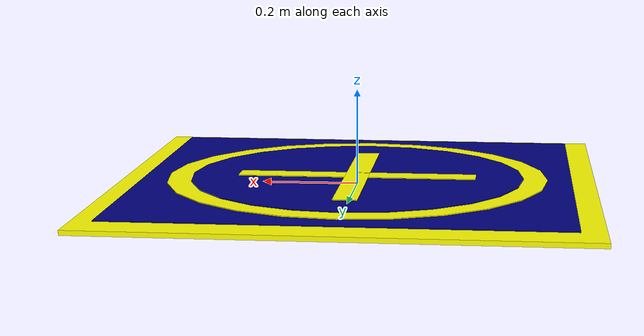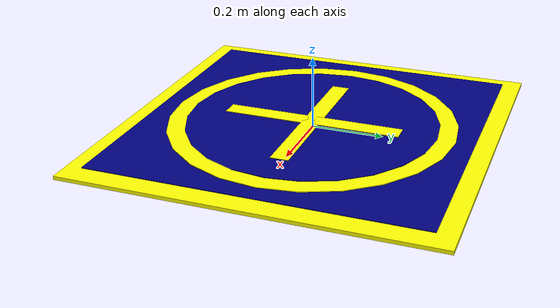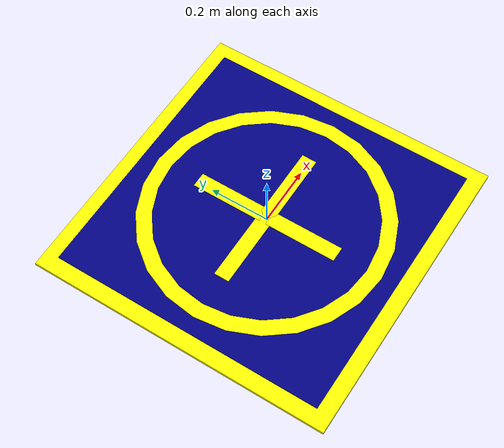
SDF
<?xml version="1.0" ?>
<sdf version="1.6">
  <model name="base_pouso">
    <static>true</static>
    <link name="link_base">

      <!-- Plano de 1x1m (contorno) -->
      <visual name="borda">
        <geometry>
          <box><size>1 1 0.01</size></box>
        </geometry>
        <material>
          <ambient>1 1 0 1</ambient>  <!-- Amarelo -->
          <diffuse>1 1 0 1</diffuse>
        </material>
      </visual>

      <!-- Plano de 1x1m (base) -->
      <visual name="base">
        <pose>0 0 0.012 0 0 0</pose>
        <geometry>
          <box><size>0.9 0.9 0.002</size></box>
        </geometry>
        <material>
          <ambient>0 0 0.5 1</ambient>  <!-- Azul escuro -->
          <diffuse>0 0 0.5 1</diffuse>
        </material>
      </visual>

      <!-- Círculo amarelo (externo: 0.8m de diâmetro) -->
      <visual name="circulo_out">
        <pose>0 0 0.014 0 0 0</pose>
        <geometry>
          <cylinder>
            <radius>0.4</radius>
            <length>0.002</length>
          </cylinder>
        </geometry>
        <material>
          <ambient>1 1 0 1</ambient>  <!-- Amarelo -->
          <diffuse>1 1 0 1</diffuse>
        </material>
      </visual>

      <!-- Círculo azul (interno: 0.7m de diâmetro) -->
      <visual name="circulo_in">
        <pose>0 0 0.016 0 0 0</pose>
        <geometry>
          <cylinder>
            <radius>0.35</radius>
            <length>0.002</length>
          </cylinder>
        </geometry>
        <material>
          <ambient>0 0 0.5 1</ambient>  <!-- Azul escuro -->
          <diffuse>0 0 0.5 1</diffuse>
        </material>
      </visual>

      <!-- Linha horizontal da cruz -->
      <visual name="linha_h">
        <pose>0 0 0.018 0 0 0</pose>
        <geometry>
          <box><size>0.5 0.05 0.002</size></box>
        </geometry>
        <material>
          <ambient>1 1 0 1</ambient>
          <diffuse>1 1 0 1</diffuse>
        </material>
      </visual>

      <!-- Linha vertical da cruz -->
      <visual name="linha_v">
        <pose>0 0 0.018 0 0 0</pose>
        <geometry>
          <box><size>0.05 0.5 0.002</size></box>
        </geometry>
        <material>
          <ambient>1 1 0 1</ambient>
          <diffuse>1 1 0 1</diffuse>
        </material>
      </visual>

    </link>
  </model>
</sdf>
